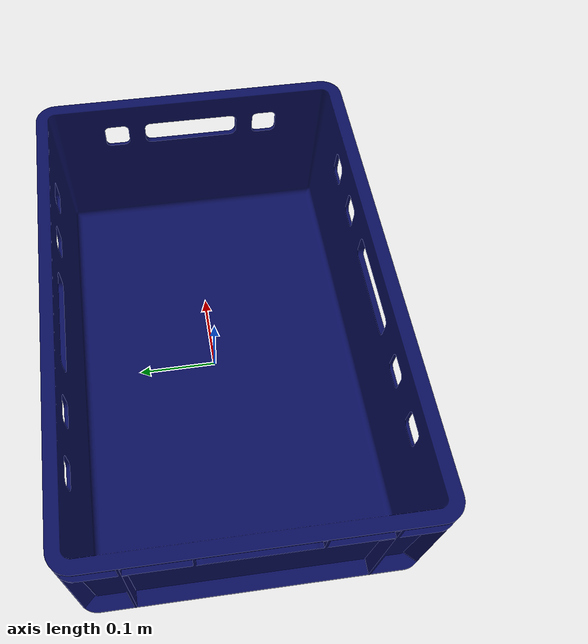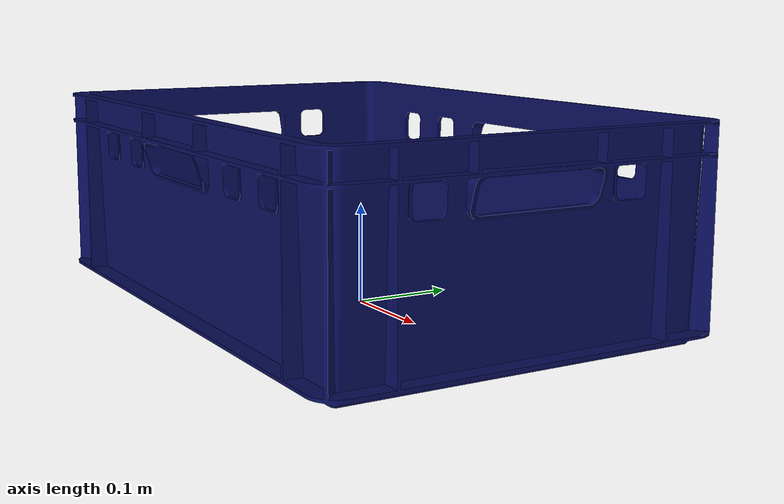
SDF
<sdf version="1.6">
  <model name="stacking_crate">
    <static>false</static>
    <link name="new_link">
      <collision name="Cube">
        <pose>0.00000 -0.00550 0.00600 0.00000 0.00000 0.00000</pose>
        <geometry>
          <box>
            <size>0.60100 0.40100 0.01206</size>
          </box>
        </geometry>
        <surface>
          <contact/>
          <friction>
            <ode>
              <mu>0.05</mu>
              <mu2>0.05</mu2>
              <slip1>0.05</slip1>
              <slip2>0.05</slip2>
            </ode>
          </friction>
        </surface>
      </collision>

      <collision name="Cube.001">
        <pose>0.00000 -0.19600 0.10000 0.00000 0.00000 0.00000</pose>
        <geometry>
          <box>
            <size>0.60100 0.02109 0.20000</size>
          </box>
        </geometry>
        <surface>
          <contact/>
        </surface>
      </collision>

      <collision name="Cube.002">
        <pose>0.00000 0.18460 0.10000 0.00000 0.00000 0.00000</pose>
        <geometry>
          <box>
            <size>0.60100 0.02109 0.20000</size>
          </box>
        </geometry>
        <surface>
          <contact/>
        </surface>
      </collision>

      <collision name="Cube.003">
        <pose>-0.29007 -0.00556 0.10000 0.00000 0.00000 0.00000</pose>
        <geometry>
          <box>
            <size>0.02109 0.40200 0.20000</size>
          </box>
        </geometry>
        <surface>
          <contact/>
        </surface>
      </collision>

      <collision name="Cube.004">
        <pose>0.29012 -0.00556 0.10000 0.00000 0.00000 0.00000</pose>
        <geometry>
          <box>
            <size>0.02109 0.40200 0.20000</size>
          </box>
        </geometry>
        <surface>
          <contact/>
        </surface>
      </collision>

      <inertial>
        <pose>0.00001 -0.00560 0.08120 0.00000 0.00000 0.00000</pose>
        <mass>1.00000</mass>
        <inertia>
          <ixx>0.01075</ixx>
          <ixy>0.00000</ixy>
          <ixz>0.00000</ixz>
          <iyy>0.02074</iyy>
          <iyz>0.00000</iyz>
          <izz>0.02616</izz>
        </inertia>
      </inertial>

      <visual name="node0">
        <pose>-0.48920 -0.29311 0.00000 0.00000 0.00000 0.00000</pose>
        <geometry>
          <mesh>
            <uri>model://stacking_crate/meshes/Body.dae</uri>
            <scale>1.00000 1.00000 1.00000</scale>
          </mesh>
        </geometry>
        <material>
          <diffuse>0.03137 0.05098 0.35294 1.00000</diffuse>
          <specular>1.00000 1.00000 1.00000 0.20392</specular>
        </material>
      </visual>
    </link>
  </model>
</sdf>
